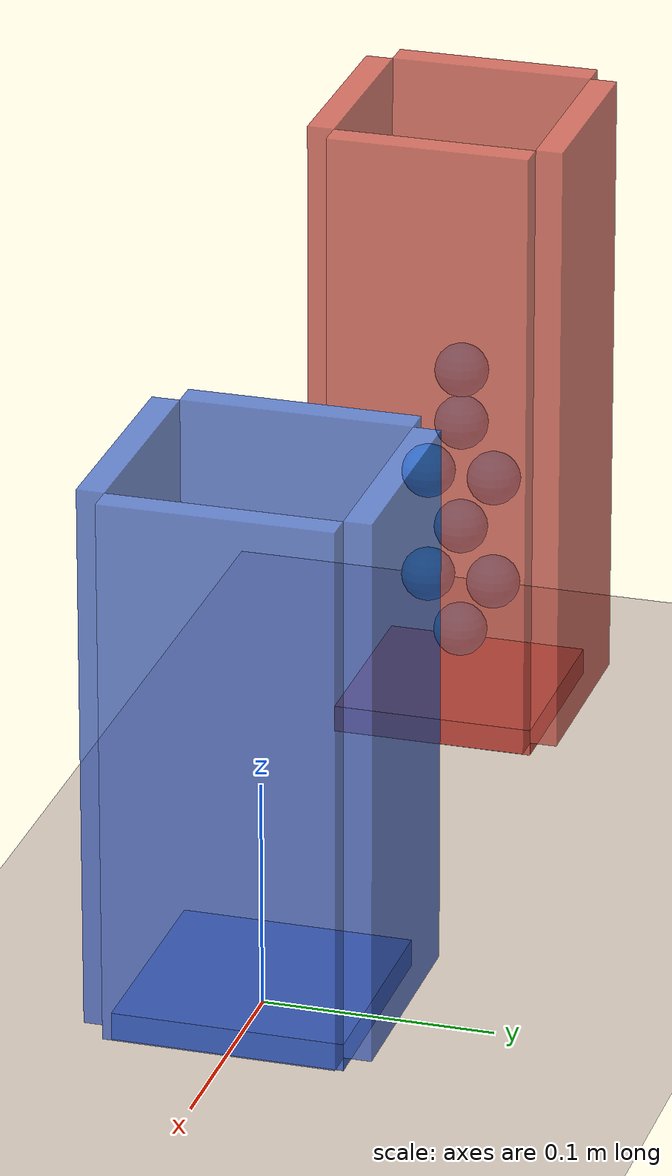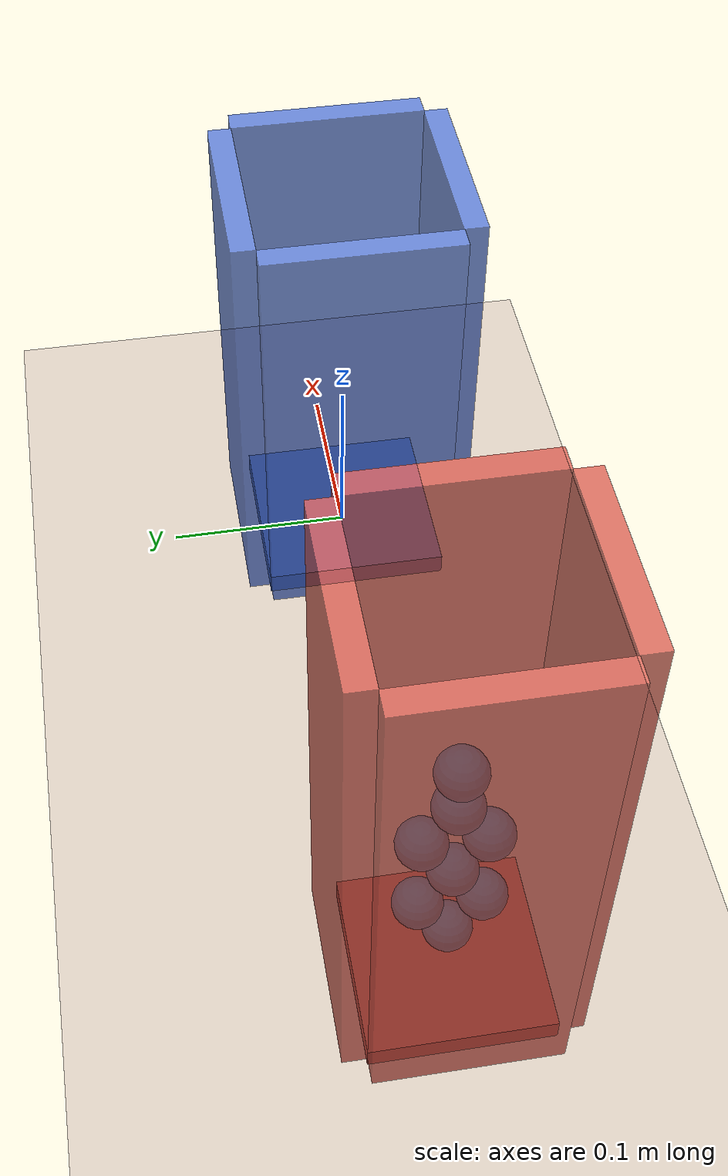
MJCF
<mujoco model="pouring_demo">
    <compiler angle="radian"/>
    <option timestep="0.004" gravity="0 0 -9.81"/>
    <default>
        <geom condim="4" friction="1 0.005 0.0001"/>
    </default>
    <worldbody>
        <!-- Floor -->
        <geom name="floor" type="plane" size="2 2 0.1" rgba="0.85 0.80 0.75 1"/>

        <body name="source_cup" pos="-0.30 0 0.15">
            <freejoint name="source_cup_joint"/>
            <geom name="sc_bottom" type="box" size="0.045 0.045 0.006" pos="0 0 -0.14"    rgba="0.85 0.35 0.3 1"/>
            <geom name="sc_right"  type="box" size="0.006 0.045 0.14"  pos=" 0.051 0 0"   rgba="0.85 0.35 0.3 0.8"/>
            <geom name="sc_left"   type="box" size="0.006 0.045 0.14"  pos="-0.051 0 0"   rgba="0.85 0.35 0.3 0.8"/>
            <geom name="sc_front"  type="box" size="0.045 0.006 0.14"  pos="0  0.051 0"   rgba="0.85 0.35 0.3 0.8"/>
            <geom name="sc_back"   type="box" size="0.045 0.006 0.14"  pos="0 -0.051 0"   rgba="0.85 0.35 0.3 0.8"/>
        </body>

        <body name="target_cup" pos="0 0 0">
            <geom name="tc_bottom" type="box" size="0.05 0.05 0.006"  pos="0 0 0.006"     rgba="0.3 0.45 0.85 1"/>
            <geom name="tc_right"  type="box" size="0.006 0.05 0.12"  pos=" 0.056 0 0.126" rgba="0.3 0.45 0.85 0.8"/>
            <geom name="tc_left"   type="box" size="0.006 0.05 0.12"  pos="-0.056 0 0.126" rgba="0.3 0.45 0.85 0.8"/>
            <geom name="tc_front"  type="box" size="0.05 0.006 0.12"  pos="0  0.056 0.126" rgba="0.3 0.45 0.85 0.8"/>
            <geom name="tc_back"   type="box" size="0.05 0.006 0.12"  pos="0 -0.056 0.126" rgba="0.3 0.45 0.85 0.8"/>
        </body>

        <body name="particle_0" pos="-0.30  0.000 0.040"><freejoint/>
            <geom type="sphere" size="0.012" mass="0.01" rgba="0.1 0.65 0.95 0.9" condim="4"/>
        </body>
        <body name="particle_1" pos="-0.30  0.015 0.065"><freejoint/>
            <geom type="sphere" size="0.012" mass="0.01" rgba="0.1 0.65 0.95 0.9" condim="4"/>
        </body>
        <body name="particle_2" pos="-0.30 -0.015 0.065"><freejoint/>
            <geom type="sphere" size="0.012" mass="0.01" rgba="0.1 0.65 0.95 0.9" condim="4"/>
        </body>
        <body name="particle_3" pos="-0.30  0.000 0.090"><freejoint/>
            <geom type="sphere" size="0.012" mass="0.01" rgba="0.1 0.65 0.95 0.9" condim="4"/>
        </body>
        <body name="particle_4" pos="-0.30  0.015 0.115"><freejoint/>
            <geom type="sphere" size="0.012" mass="0.01" rgba="0.1 0.65 0.95 0.9" condim="4"/>
        </body>
        <body name="particle_5" pos="-0.30 -0.015 0.115"><freejoint/>
            <geom type="sphere" size="0.012" mass="0.01" rgba="0.1 0.65 0.95 0.9" condim="4"/>
        </body>
        <body name="particle_6" pos="-0.30  0.000 0.140"><freejoint/>
            <geom type="sphere" size="0.012" mass="0.01" rgba="0.1 0.65 0.95 0.9" condim="4"/>
        </body>
        <body name="particle_7" pos="-0.30  0.000 0.165"><freejoint/>
            <geom type="sphere" size="0.012" mass="0.01" rgba="0.1 0.65 0.95 0.9" condim="4"/>
        </body>
    </worldbody>
</mujoco>
